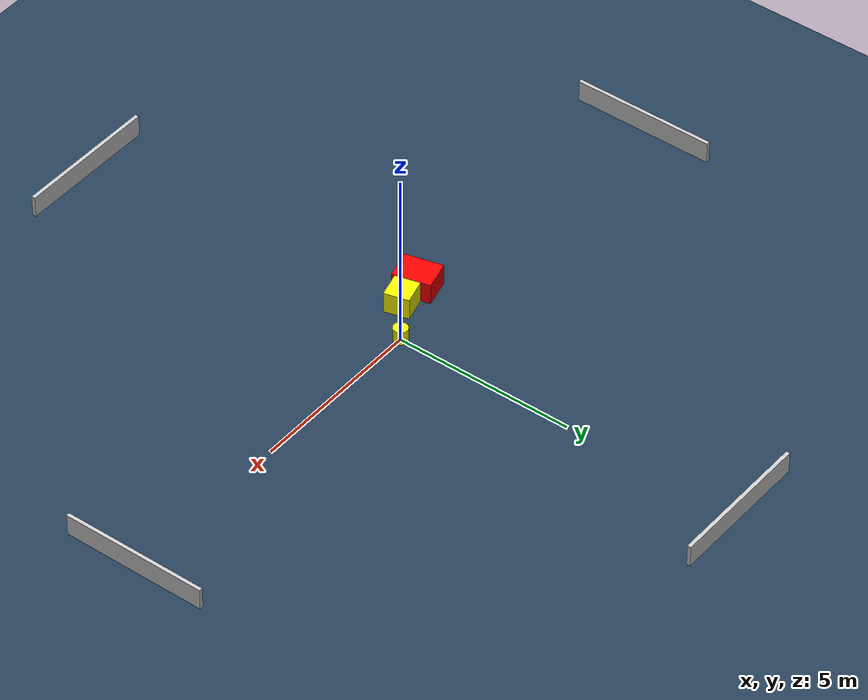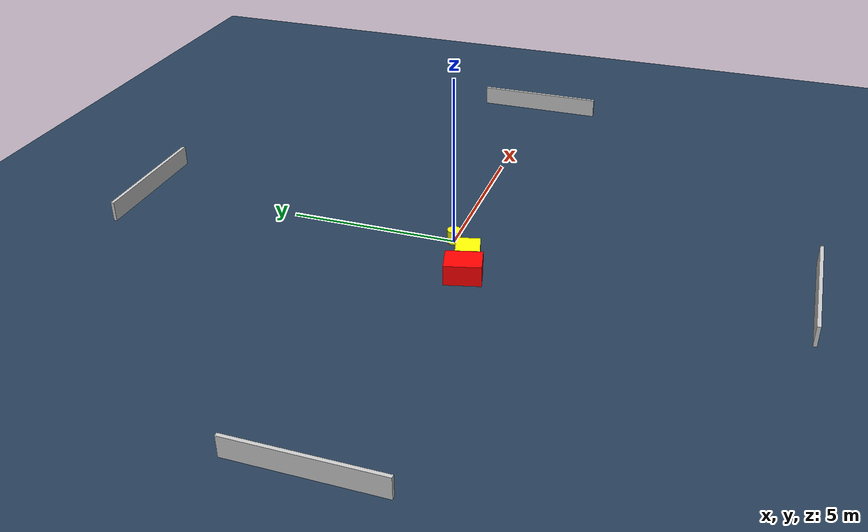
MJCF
<?xml version="1.0" ?>
<mujoco model="generated_environment">
  <option timestep="0.01" integrator="RK4" cone="elliptic"/>
  <default>
    <geom density="1"/>
  </default>
  <asset>
    <texture builtin="gradient" height="3072" name="skybox" rgb1="0.3 0.5 0.7" rgb2="0 0 0" type="skybox" width="512"/>
    <texture builtin="checker" height="300" name="groundplane" rgb1="0.2 0.3 0.4" rgb2="0.1 0.2 0.3" type="2d" width="300"/>
    <material name="groundplane" reflectance="0.2" texrepeat="5 5" texture="groundplane"/>
  </asset>
  <worldbody>
    <light dir="0 0 -1" directional="true" pos="0 0 1.5"/>
    <geom condim="3" friction="0.5 0.005 0.001" material="groundplane" name="floor" pos="0 0 0" size="0 0 0.05" type="plane"/>
    <body name="walls">
      <geom name="wall_1" condim="4" pos="-10.0 0.0 0.3" rgba="0.800000011920929 0.800000011920929 0.800000011920929 1.0" size="0.05 2.0 0.3" type="box"/>
      <geom name="wall_2" condim="4" pos="10.0 0.0 0.3" rgba="0.800000011920929 0.800000011920929 0.800000011920929 1.0" size="0.05 2.0 0.3" type="box"/>
      <geom name="wall_3" condim="4" pos="0.0 -10.0 0.3" rgba="0.800000011920929 0.800000011920929 0.800000011920929 1.0" size="2.0 0.05 0.3" type="box"/>
      <geom name="wall_4" condim="4" pos="0.0 10.0 0.3" rgba="0.800000011920929 0.800000011920929 0.800000011920929 1.0" size="2.0 0.05 0.3" type="box"/>
    </body>
    <body name="robot">
      <joint name="joint_x" type="slide" pos="0 0 0" axis="1 0 0"/>
      <joint name="joint_y" type="slide" pos="0 0 0" axis="0 1 0"/>
      <geom name="robot" type="cylinder" pos="0.0 0.0 0.2" size="0.2 0.2 0.0" mass="5.0" friction="1.0 0.005 0.0001" condim="4" rgba="1.0 1.0 0.0 1.0"/>
    </body>
    <body name="obstacle_1_movable">
      <geom name="obstacle_1_movable" condim="4" pos="-0.9721535450634435 -0.716762095649936 0.3" euler="0 0 104.68984990270296" friction="0.0 0.005 0.001" rgba="1.0 1.0 0.0 1.0" size="0.3426656278608056 0.35446253735508837 0.3" type="box" mass="0.1"/>
      <joint type="free"/>
    </body>
    <body name="obstacle_2_static">
      <geom name="obstacle_2_static" condim="4" pos="-1.738059643608232 -0.8265248886640931 0.3" euler="0 0 194.06330538539746" friction="0.0 0.005 0.001" rgba="1.0 0.0 0.0 1.0" size="0.4070851642402927 0.5234262427100906 0.3" type="box"/>
    </body>
  </worldbody>
  <actuator>
    <motor name="actuator_x" joint="joint_x" gear="1" ctrlrange="-1 1"/>
    <motor name="actuator_y" joint="joint_y" gear="1" ctrlrange="-1 1"/>
  </actuator>
</mujoco>
